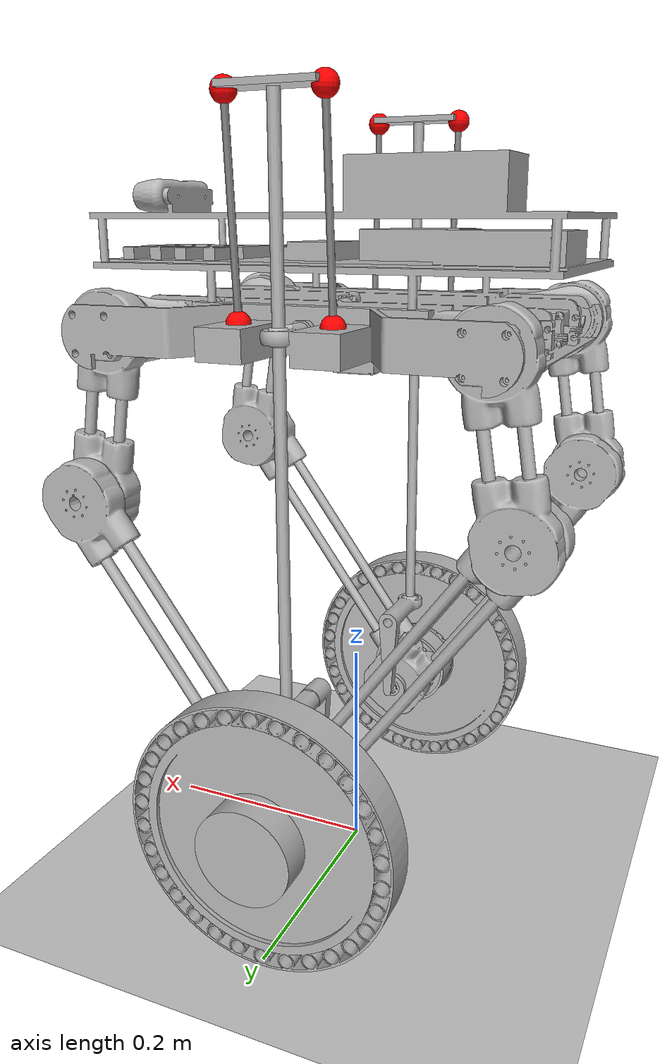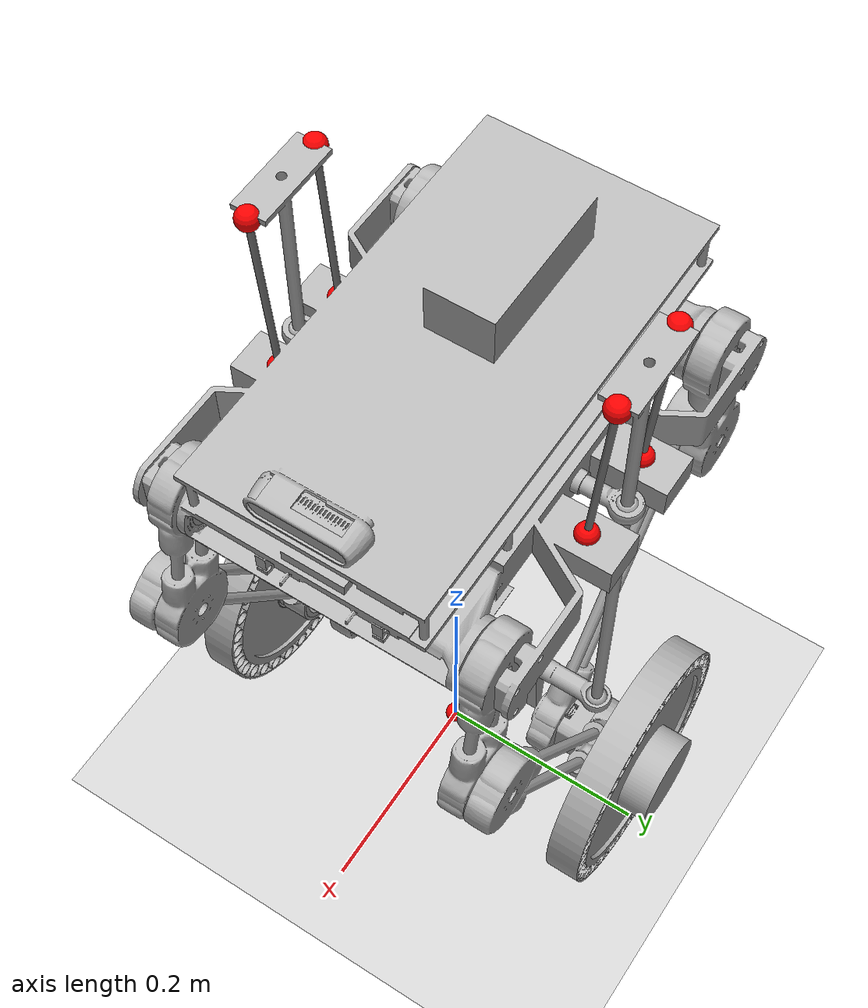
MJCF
<mujoco model="zino">
  <compiler angle="radian" inertiafromgeom="auto"/>
  <default>
  <joint armature="0.01" damping="1.0"/>
  </default>
  <equality>
  <weld name="leftmotorhold_joint" body1="lowerlefttibia_link_1" body2="leftmotorjoiner_link_1" />
  <weld name="rightmotorhold_joint" body1="lowerrighttibia_link_v1_1" body2="rightmotorjoiner_link_1" />
  <weld name="rightrodhold_joint" body1="rightrod_link_1" body2="rightlr_link_1" />
  <weld name="leftrodhold_joint" body1="leftrod_link_1" body2="leftlr_link_1" />
  </equality>

  <asset>
    <mesh name="base_link" content_type="model/stl" file="../meshes/base_link.stl" scale="0.001 0.001 0.001"/>
    <mesh name="camera_link_1" content_type="model/stl" file="../meshes/camera_link_1.stl" scale="0.001 0.001 0.001"/>
    <mesh name="lowerleftjaw_link_1" content_type="model/stl" file="../meshes/lowerleftjaw_link_1.stl" scale="0.001 0.001 0.001"/>
    <mesh name="upperleftjaw_link_1" content_type="model/stl" file="../meshes/upperleftjaw_link_1.stl" scale="0.001 0.001 0.001"/>
    <mesh name="upperrightjaw_link_1" content_type="model/stl" file="../meshes/upperrightjaw_link_1.stl" scale="0.001 0.001 0.001"/>
    <mesh name="lowerrightjaw_link_1" content_type="model/stl" file="../meshes/lowerrightjaw_link_1.stl" scale="0.001 0.001 0.001"/>
    <mesh name="lowerleftfemur_link_1" content_type="model/stl" file="../meshes/lowerleftfemur_link_1.stl" scale="0.001 0.001 0.001"/>
    <mesh name="lowerrightfemur_link_1" content_type="model/stl" file="../meshes/lowerrightfemur_link_1.stl" scale="0.001 0.001 0.001"/>
    <mesh name="upperleftfemur_link_1" content_type="model/stl" file="../meshes/upperleftfemur_link_1.stl" scale="0.001 0.001 0.001"/>
    <mesh name="upperrightfemur_link_1" content_type="model/stl" file="../meshes/upperrightfemur_link_1.stl" scale="0.001 0.001 0.001"/>
    <mesh name="lowerlefttibia_link_1" content_type="model/stl" file="../meshes/lowerlefttibia_link_1.stl" scale="0.001 0.001 0.001"/>
    <mesh name="lowerrighttibia_link_v1_1" content_type="model/stl" file="../meshes/lowerrighttibia_link_v1_1.stl" scale="0.001 0.001 0.001"/>
    <mesh name="upperlefttibia_link_1" content_type="model/stl" file="../meshes/upperlefttibia_link_1.stl" scale="0.001 0.001 0.001"/>
    <mesh name="upperrighttibia_link_1" content_type="model/stl" file="../meshes/upperrighttibia_link_1.stl" scale="0.001 0.001 0.001"/>
    <mesh name="leftmotorjoiner_link_1" content_type="model/stl" file="../meshes/leftmotorjoiner_link_1.stl" scale="0.001 0.001 0.001"/>
    <mesh name="rightmotorjoiner_link_1" content_type="model/stl" file="../meshes/rightmotorjoiner_link_1.stl" scale="0.001 0.001 0.001"/>
    <mesh name="leftheim_link_1" content_type="model/stl" file="../meshes/leftheim_link_1.stl" scale="0.001 0.001 0.001"/>
    <mesh name="rightheim_link_1" content_type="model/stl" file="../meshes/rightheim_link_1.stl" scale="0.001 0.001 0.001"/>
    <mesh name="rightwheel_link_1" content_type="model/stl" file="../meshes/rightwheel_link_1.stl" scale="0.001 0.001 0.001"/>
    <mesh name="leftwheel_link_1" content_type="model/stl" file="../meshes/leftwheel_link_1.stl" scale="0.001 0.001 0.001"/>
    <mesh name="rightrod_link_1" content_type="model/stl" file="../meshes/rightrod_link_1.stl" scale="0.001 0.001 0.001"/>
    <mesh name="rightlr_link_1" content_type="model/stl" file="../meshes/rightlr_link_1.stl" scale="0.001 0.001 0.001"/>
    <mesh name="leftlr_link_1" content_type="model/stl" file="../meshes/leftlr_link_1.stl" scale="0.001 0.001 0.001"/>
    <mesh name="leftrod_link_1" content_type="model/stl" file="../meshes/leftrod_link_1.stl" scale="0.001 0.001 0.001"/>
  </asset>

  <worldbody>
    <light pos="0 0 3" dir="0 0 -1" directional="true"/>
    <geom name="floor" type="plane" size="10 10 0.1" rgba="0.8 0.8 0.8 1"/>

    <!-- MAIN CHASSIS BODY -->
    <body name="base_link" pos="0 0 0">
      <site name="origin_check" pos="0 0 0" size="0.01" rgba="1 0 0 1"/>
      <site name="urs1" pos="0.04 -0.136963 0.52705" size="0.01" rgba="1 0 0 1"/>
      <site name="lrs1" pos="-0.04 -0.136963 0.52705" size="0.01" rgba="1 0 0 1"/>
      <site name="uls1" pos="0.04 0.136963 0.52705" size="0.01" rgba="1 0 0 1"/>
      <site name="lls1" pos="-0.04 0.136963 0.52705" size="0.01" rgba="1 0 0 1"/>
      <!-- Freejoint allows translation and rotation in 6 DoF -->
      <freejoint/>

      <!-- Chassis Visual Meshes -->
      <geom type="mesh" rgba="0.7 0.7 0.7 1" mesh="base_link" mass="2.586"/>
      <body name="camera_link_1" pos="0.171424 0.0225 0.623549">

        <!-- Inertial properties from URDF -->
        <inertial pos="0.011946 -0.022562 -0.000022"
                  mass="0.072"
                  fullinertia="0.000227 0.000032 0.000229 -0.000002 0.0 0.0"/>

        <!-- Camera Visual & Collision Mesh -->
        <geom type="mesh"
              mesh="camera_link_1"
              pos="-0.171424 -0.0225 -0.623549"
              rgba="0.7 0.7 0.7 1"/>

        <!-- IMU Sensor Mount Site (At Camera Origin) -->
        <site name="camera_imu_site" pos="0 0 0" size="0.005"/>

      </body>

      <!-- JAW MECHANISMS -->
      <body name="lowerleftjaw_link_1" pos="-0.162 0.077584 0.5158">
        <inertial pos="-1.87206e-09 0.00421285 -1.00356e-09" quat="0.707107 0 0 0.707107" mass="0.0735969" diaginertia="9e-06 7e-06 7e-06"/>
        <joint name="LLservo_joint" pos="0 0 0" axis="0 -1 0"/>
        <geom pos="0.162 -0.077584 -0.5158" quat="1 0 0 0" type="mesh" rgba="0.7 0.7 0.7 1" mesh="lowerleftjaw_link_1"/>
      </body>

      <body name="upperleftjaw_link_1" pos="0.162 0.077584 0.5158">
        <inertial pos="7.13853e-10 0.00421285 -1.71795e-09" quat="0.707107 0 0 0.707107" mass="0.0735969" diaginertia="9e-06 7e-06 7e-06"/>
        <joint name="ULservo_joint" pos="0 0 0" axis="0 1 0"/>
        <geom pos="-0.162 -0.077584 -0.5158" quat="1 0 0 0" type="mesh" rgba="0.7 0.7 0.7 1" mesh="upperleftjaw_link_1"/>
      </body>

      <body name="upperrightjaw_link_1" pos="0.162 -0.077584 0.5158">
        <inertial pos="7.13826e-10 -0.00421285 -1.71796e-09" quat="0.707107 0 0 0.707107" mass="0.0735969" diaginertia="9e-06 7e-06 7e-06"/>
        <joint name="URservo_joint" pos="0 0 0" axis="0 1 0"/>
        <geom pos="-0.162 0.077584 -0.5158" quat="1 0 0 0" type="mesh" rgba="0.7 0.7 0.7 1" mesh="upperrightjaw_link_1"/>
      </body>

      <body name="lowerrightjaw_link_1" pos="-0.162 -0.077584 0.5158">
        <inertial pos="1.87205e-09 -0.00421285 1.00357e-09" quat="0.707107 0 0 0.707107" mass="0.0735969" diaginertia="9e-06 7e-06 7e-06"/>
        <joint name="LRservo_joint" pos="0 0 0" axis="0 -1 0"/>
        <geom pos="0.162 0.077584 -0.5158" quat="1 0 0 0" type="mesh" rgba="0.7 0.7 0.7 1" mesh="lowerrightjaw_link_1"/>
      </body>

      <!-- LEFT LEG ASSEMBLY -->
      <body name="lowerleftfemur_link_1" pos="-0.162 0.114084 0.5158">
        <inertial pos="-0.0118872 0.0186176 -0.0729198" quat="0.704903 0.0540082 0.0601335 0.704684" mass="0.436" diaginertia="0.00888061 0.00847764 0.000649751"/>
        <joint name="LLhip_joint" pos="0 0 0" axis="0 -1 0"/>
        <geom pos="0.162 -0.114084 -0.5158" quat="1 0 0 0" type="mesh" rgba="0.7 0.7 0.7 1" mesh="lowerleftfemur_link_1"/>
        <body name="lowerlefttibia_link_1" pos="-0.022927 -0.001 -0.140643">
          <inertial pos="0.091624 -0.00415026 -0.126473" quat="0.672687 -0.21703 -0.219054 0.672611" mass="0.241" diaginertia="0.0279392 0.0275565 0.000490335"/>
          <joint name="LLknee_joint" pos="0 0 0" axis="0 1 0"/>
          <geom pos="0.184927 -0.113084 -0.375157" quat="1 0 0 0" type="mesh" rgba="0.7 0.7 0.7 1" mesh="lowerlefttibia_link_1"/>
          <body name="leftlr_link_1" pos="0.184929 -0.014 -0.255003">
            <inertial pos="-2.11581e-07 0.00805131 0.0622723" quat="0.944555 -0.328353 0 0" mass="0.03" diaginertia="0.000295 0.000232102 7.58975e-05"/>
            <joint name="leftrodrotate_joint" pos="0 0 0" axis="0 1 0"/>
            <geom pos="-2e-06 -0.099084 -0.120154" type="mesh" rgba="0.7 0.7 0.7 1" mesh="leftlr_link_1"/>
          </body>
        </body>
      </body>

      <!-- RIGHT LEG ASSEMBLY -->
      <body name="lowerrightfemur_link_1" pos="-0.162 -0.114084 0.5158">
        <inertial pos="-0.0119046 -0.0186176 -0.072917" quat="0.704659 0.0602347 0.0541063 0.704912" mass="0.436" diaginertia="0.00888061 0.00847733 0.000650063"/>
        <joint name="LRhip_joint" pos="0 0 0" axis="0 -1 0"/>
        <geom pos="0.162 0.114084 -0.5158" quat="1 0 0 0" type="mesh" rgba="0.7 0.7 0.7 1" mesh="lowerrightfemur_link_1"/>
        <body name="lowerrighttibia_link_v1_1" pos="-0.022961 0.001 -0.140638">
          <inertial pos="0.0915321 0.00415062 -0.126515" quat="0.672725 -0.218818 -0.216822 0.672717" mass="0.241" diaginertia="0.0279432 0.0275606 0.00049117"/>
          <joint name="LRknee_joint" pos="0 0 0" axis="0 1 0"/>
          <geom pos="0.184961 0.113084 -0.375162" quat="1 0 0 0" type="mesh" rgba="0.7 0.7 0.7 1" mesh="lowerrighttibia_link_v1_1"/>
          <body name="rightlr_link_1" pos="0.184766 0.014 -0.255121">
            <inertial pos="6.99389e-05 -0.00805132 0.0622726" quat="0.944555 0.328353 0 0" mass="0.03" diaginertia="0.000295 0.000232102 7.58975e-05"/>
            <joint name="rightrodrotate_joint" pos="0 0 0" axis="0 1 0"/>
            <geom pos="0.000195 0.099084 -0.120041" type="mesh" rgba="0.7 0.7 0.7 1" mesh="rightlr_link_1"/>
          </body>
        </body>
      </body>

      <!-- UPPER LEFT FEMUR & WHEEL ASSEMBLY -->
      <body name="upperleftfemur_link_1" pos="0.162 0.114084 0.5158">
        <inertial pos="0.0118823 0.0210978 -0.0728809" quat="0.703403 -0.0466277 -0.0675348 0.706038" mass="0.436" diaginertia="0.00889231 0.00848883 0.000648868"/>
        <joint name="ULhip_joint" pos="0 0 0" axis="0 1 0"/>
        <geom pos="-0.162 -0.114084 -0.5158" quat="1 0 0 0" type="mesh" rgba="0.7 0.7 0.7 1" mesh="upperleftfemur_link_1"/>
        <body name="upperlefttibia_link_1" pos="0.02293 0.042 -0.140643">
          <inertial pos="-0.0560158 0.00416373 -0.0772407" quat="0.671402 0.216752 0.219696 0.673774" mass="0.172" diaginertia="0.0155624 0.0152398 0.000388806"/>
          <joint name="ULknee_joint" pos="0 0 0" axis="0 1 0"/>
          <geom pos="-0.18493 -0.156084 -0.375157" quat="1 0 0 0" type="mesh" rgba="0.7 0.7 0.7 1" mesh="upperlefttibia_link_1"/>
          <body name="leftmotorjoiner_link_1" pos="-0.184928 0.0165 -0.255003">
            <inertial pos="6.17374e-06 0.00654453 -7.47462e-05" quat="0.709503 0.704692 0.00250802 -0.0028469" mass="0.76" diaginertia="0.004402 0.0044011 0.0021969"/>
            <joint name="leftmotorfree_joint" pos="0 0 0" axis="0 1 0"/>
            <geom pos="-2e-06 -0.172584 -0.120154" quat="1 0 0 0" type="mesh" rgba="0.7 0.7 0.7 1" mesh="leftmotorjoiner_link_1"/>
            <body name="leftwheel_link_1" pos="8.7e-05 0.005 -0.000996">
              <inertial pos="-1.97204e-07 0.0120001 -2.10744e-07" quat="0.707107 0 0 0.707107" mass="0.48" diaginertia="0.046511 0.023635 0.023635"/>
              <joint name="leftwheel_joint" pos="0 0 0" axis="0 -1 0"/>
              <geom pos="-8.9e-05 -0.177584 -0.119158" quat="1 0 0 0" type="mesh" rgba="0.7 0.7 0.7 1" mesh="leftwheel_link_1"/>
            </body>
          </body>
        </body>
      </body>

      <!-- UPPER RIGHT FEMUR & WHEEL ASSEMBLY -->
      <body name="upperrightfemur_link_1" pos="0.162 -0.114084 0.5158">
        <inertial pos="0.0117332 -0.0210978 -0.0729051" quat="0.705655 -0.0668452 -0.0458805 0.703901" mass="0.436" diaginertia="0.0088923 0.00848884 0.000648869"/>
        <joint name="URhip_joint" pos="0 0 0" axis="0 1 0"/>s
        <geom pos="-0.162 0.114084 -0.5158" quat="1 0 0 0" type="mesh" rgba="0.7 0.7 0.7 1" mesh="upperrightfemur_link_1"/>
        <body name="upperrighttibia_link_1" pos="0.022642 -0.042 -0.14069">
          <inertial pos="-0.0559647 -0.00416488 -0.0772261" quat="0.673838 0.219569 0.216643 0.671414" mass="0.172" diaginertia="0.0155664 0.015243 0.000388596"/>
          <joint name="URknee_joint" pos="0 0 0" axis="0 1 0"/>
          <geom pos="-0.184642 0.156084 -0.37511" quat="1 0 0 0" type="mesh" rgba="0.7 0.7 0.7 1" mesh="upperrighttibia_link_1"/>
          <body name="rightmotorjoiner_link_1" pos="-0.184837 -0.0165 -0.255069">
            <inertial pos="6.50623e-06 -0.00654453 -7.44285e-05" quat="0.704692 0.709503 0.0028469 -0.00250802" mass="0.76" diaginertia="0.004402 0.0044011 0.0021969"/>
            <joint name="rightmotorfree_joint" pos="0 0 0" axis="0 1 0"/>
            <geom pos="0.000195 0.172584 -0.120041" quat="1 0 0 0" type="mesh" rgba="0.7 0.7 0.7 1" mesh="rightmotorjoiner_link_1"/>
            <body name="rightwheel_link_1" pos="8.7e-05 -0.005 -0.000996">
              <inertial pos="-4.53742e-07 -0.0120001 5.56275e-08" quat="0.707107 0 0 0.707107" mass="0.48" diaginertia="0.046511 0.023635 0.023635"/>
              <joint name="rightwheel_joint" pos="0 0 0" axis="0 -1 0"/>
              <geom pos="0.000108 0.177584 -0.119045" quat="1 0 0 0" type="mesh" rgba="0.7 0.7 0.7 1" mesh="rightwheel_link_1"/>
            </body>
          </body>
        </body>
      </body>

      <!-- HEIM SUSPENSION ROD ASSEMBLY -->
      <body name="leftheim_link_1" pos="0 0.104463 0.52005">
        <inertial pos="9.20725e-08 0.0305236 -1.32537e-06" quat="0.5 0.5 -0.5 0.5" mass="0.0784258" diaginertia="2.4e-05 2.2e-05 4e-06"/>
        <joint name="leftheim_joint" pos="0 0 0" axis="0 -1 0"/>
        <geom pos="0 -0.104463 -0.52005" quat="1 0 0 0" type="mesh" rgba="0.7 0.7 0.7 1" mesh="leftheim_link_1"/>
        <body name="leftrod_link_1" pos="1e-06 0.043 0.007">
          <site name="uls2" pos="0.04 0.0 0.165205" size="0.01" rgba="1 0 0 1"/>
          <site name="lls2" pos="-0.04 0.0 0.165205" size="0.01" rgba="1 0 0 1"/>
          <inertial pos="-4.71806e-07 -7.10665e-07 0.036189" quat="0.707107 0 0 0.707107" mass="0.200619" diaginertia="0.005159 0.005116 6e-05"/>
          <!-- To make this a spring compliance joint, stiffness and damping are added below -->
          <joint name="leftrodslide_joint" pos="0 0 0" axis="-8.3e-05 0 -1" type="slide" range="-0.5 0.5" />
          <geom pos="-1e-06 -0.147463 -0.52705" quat="1 0 0 0" type="mesh" rgba="0.7 0.7 0.7 1" mesh="leftrod_link_1"/>
        </body>
      </body>

      <body name="rightheim_link_1" pos="0 -0.104463 0.52005">
        <inertial pos="4.52302e-08 -0.0305233 1.40357e-06" quat="0.5 0.5 -0.5 0.5" mass="0.0784276" diaginertia="2.4e-05 2.2e-05 4e-06"/>
        <joint name="rightheim_joint" pos="0 0 0" axis="0 1 0"/>
        <geom pos="0 0.104463 -0.52005" quat="1 0 0 0" type="mesh" rgba="0.7 0.7 0.7 1" mesh="rightheim_link_1"/>
        <body name="rightrod_link_1" pos="0 -0.043 0.007">
          <site name="urs2" pos="0.04079 0.0 0.165075" size="0.01" rgba="1 0 0 1"/>
          <site name="lrs2" pos="-0.039921 0.0 0.165113" size="0.01" rgba="1 0 0 1"/>
          <inertial pos="1.72137e-05 7.10741e-07 0.0360763" quat="0.707107 0.000139855 0.000139855 0.707107" mass="0.200619" diaginertia="0.005159 0.005116 5.99992e-05"/>
          <joint name="rightrodslide_joint" pos="0 0 0" axis="-1.4e-05 0 1" type="slide" range="-0.5 0.5" />
          <geom pos="0 0.147463 -0.52705" quat="1 0 0 0" type="mesh" rgba="0.7 0.7 0.7 1" mesh="rightrod_link_1"/>
        </body>
      </body>

    </body> <!-- END base_link -->
  </worldbody>

  <tendon>
  <spatial name="upperrightspring"
           stiffness="308"
           damping="0"
           springlength="0.1651"
           width="0.003">
    <site site="urs1"/>
    <site site="urs2"/>
  </spatial>
  <spatial name="lowerrightspring"
           stiffness="308"
           damping="0"
           springlength="0.1651"
           width="0.003">
    <site site="lrs1"/>
    <site site="lrs2"/>
  </spatial>
  <spatial name="upperleftspring"
           stiffness="308"
           damping="0"
           springlength="0.1651"
           width="0.003">
    <site site="uls1"/>
    <site site="uls2"/>
  </spatial>
  <spatial name="lowerleftspring"
           stiffness="308"
           damping="0"
           springlength="0.1651"
           width="0.003">
    <site site="lls1"/>
    <site site="lls2"/>
  </spatial>
  </tendon>

  <sensor>
    <accelerometer name="camera_imu_accel" site="camera_imu_site"/>
    <gyro name="camera_imu_gyro" site="camera_imu_site"/>
    <framequat name="camera_imu_quat" objtype="site" objname="camera_imu_site"/>
  </sensor>

  <actuator>

    <velocity name="left_wheel_motor" joint="leftwheel_joint" kv="-3000" ctrlrange="-20.94 20.94"/>
    <velocity name="right_wheel_motor" joint="rightwheel_joint" kv="-3000" ctrlrange="-20.94 20.94"/>

    <position name="UL_hip_servo" joint="ULhip_joint" kp="200" kv="10"/>
    <position name="UR_hip_servo" joint="URhip_joint" kp="200" kv="10"/>
    <position name="LL_hip_servo" joint="LLhip_joint" kp="200" kv="10"/>
    <position name="LR_hip_servo" joint="LRhip_joint" kp="200" kv="10"/>

  </actuator>

</mujoco>
